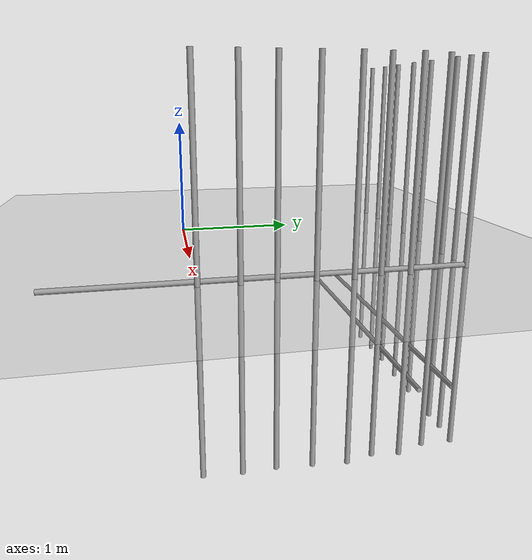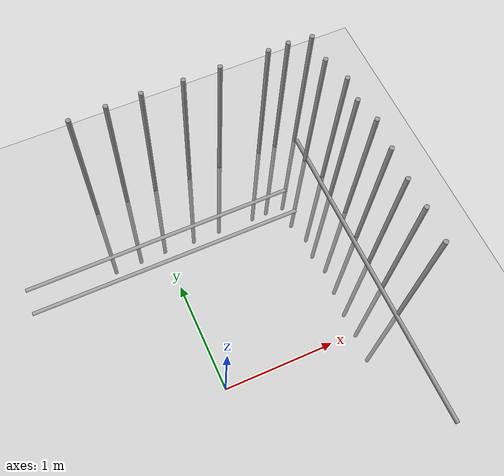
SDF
<sdf version="1.7">
 <world name="default">
  <model name="ground_plane">
   <static>1</static>
   <link name="link">
    <collision name="collision">
     <geometry><plane><normal>0 0 1</normal><size>100 100</size></plane></geometry>
     <surface><friction><ode><mu>100</mu><mu2>50</mu2></ode></friction></surface>
    </collision>
    <visual name="visual">
     <cast_shadows>0</cast_shadows>
     <geometry><plane><normal>0 0 1</normal><size>100 100</size></plane></geometry>
     <material>
      <texture><uri>file:/home/ronin/ws_smart_car/src/world_pkg/world/ground_plane.png</uri></texture>
     </material>
    </visual>
   </link>
  </model>
  <model name="Rebar_cross_clone">
   <static>1</static>
   <link name="link_0">
    <inertial>
     <mass>1</mass>
     <inertia><ixx>0.145833</ixx><ixy>0</ixy><ixz>0</ixz><iyy>0.145833</iyy><iyz>0</iyz><izz>0.125</izz></inertia>
    </inertial>
    <pose>0 0 0 1.57002 1.57 2.4e-05</pose>
    <visual name="visual">
     <geometry><cylinder><radius>0.02</radius><length>3</length></cylinder></geometry>
     <material>
      <lighting>1</lighting>
      <script><uri>file://media/materials/scripts/gazebo.material</uri><name>Gazebo/Grey</name></script>
      <shader type="pixel"><normal_map>__default__</normal_map></shader>
      <ambient>0.3 0.3 0.3 1</ambient>
      <diffuse>0.7 0.7 0.7 1</diffuse>
      <specular>0.01 0.01 0.01 1</specular>
      <emissive>0 0 0 1</emissive>
     </material>
    </visual>
    <collision name="collision">
     <geometry><cylinder><radius>0.02</radius><length>3</length></cylinder></geometry>
     <surface>
      <friction>
       <ode><mu>1</mu><mu2>1</mu2><fdir1>0 0 0</fdir1><slip1>0</slip1><slip2>0</slip2></ode>
       <torsional>
        <coefficient>1</coefficient>
        <patch_radius>0</patch_radius>
        <surface_radius>0</surface_radius>
        <use_patch_radius>1</use_patch_radius>
        <ode><slip>0</slip></ode>
       </torsional>
      </friction>
      <bounce><restitution_coefficient>0</restitution_coefficient><threshold>1e+06</threshold></bounce>
      <contact>
       <collide_without_contact>0</collide_without_contact>
       <collide_without_contact_bitmask>1</collide_without_contact_bitmask>
       <collide_bitmask>1</collide_bitmask>
       <ode>
        <soft_cfm>0</soft_cfm>
        <soft_erp>0.2</soft_erp>
        <kp>1e+13</kp>
        <kd>1</kd>
        <max_vel>0.01</max_vel>
        <min_depth>0</min_depth>
       </ode>
       <bullet>
        <split_impulse>1</split_impulse>
        <split_impulse_penetration_threshold>-0.01</split_impulse_penetration_threshold>
        <soft_cfm>0</soft_cfm>
        <soft_erp>0.2</soft_erp>
        <kp>1e+13</kp>
        <kd>1</kd>
       </bullet>
      </contact>
     </surface>
    </collision>
   </link>
   <static>0</static>
   <pose>1.63477 0.477366 0.02 -3e-06 0.003983 0.001736</pose>
  </model>
  <model name="Rebar_clone_0_clone_5">
   <static>1</static>
   <link name="link_0">
    <inertial>
     <mass>1</mass>
     <inertia><ixx>0.145833</ixx><ixy>0</ixy><ixz>0</ixz><iyy>0.145833</iyy><iyz>0</iyz><izz>0.125</izz></inertia>
    </inertial>
    <pose>0 0 -0 0 1.57 0</pose>
    <visual name="visual">
     <geometry><cylinder><radius>0.02</radius><length>3</length></cylinder></geometry>
     <material>
      <lighting>1</lighting>
      <script><uri>file://media/materials/scripts/gazebo.material</uri><name>Gazebo/Grey</name></script>
      <shader type="pixel"><normal_map>__default__</normal_map></shader>
      <ambient>0.3 0.3 0.3 1</ambient>
      <diffuse>0.7 0.7 0.7 1</diffuse>
      <specular>0.01 0.01 0.01 1</specular>
      <emissive>0 0 0 1</emissive>
     </material>
    </visual>
    <collision name="collision">
     <geometry><cylinder><radius>0.02</radius><length>3</length></cylinder></geometry>
     <surface>
      <friction>
       <ode><mu>1</mu><mu2>1</mu2><fdir1>0 0 0</fdir1><slip1>0</slip1><slip2>0</slip2></ode>
       <torsional>
        <coefficient>1</coefficient>
        <patch_radius>0</patch_radius>
        <surface_radius>0</surface_radius>
        <use_patch_radius>1</use_patch_radius>
        <ode><slip>0</slip></ode>
       </torsional>
      </friction>
      <bounce><restitution_coefficient>0</restitution_coefficient><threshold>1e+06</threshold></bounce>
      <contact>
       <collide_without_contact>0</collide_without_contact>
       <collide_without_contact_bitmask>1</collide_without_contact_bitmask>
       <collide_bitmask>1</collide_bitmask>
       <ode>
        <soft_cfm>0</soft_cfm>
        <soft_erp>0.2</soft_erp>
        <kp>1e+13</kp>
        <kd>1</kd>
        <max_vel>0.01</max_vel>
        <min_depth>0</min_depth>
       </ode>
       <bullet>
        <split_impulse>1</split_impulse>
        <split_impulse_penetration_threshold>-0.01</split_impulse_penetration_threshold>
        <soft_cfm>0</soft_cfm>
        <soft_erp>0.2</soft_erp>
        <kp>1e+13</kp>
        <kd>1</kd>
       </bullet>
      </contact>
     </surface>
    </collision>
   </link>
   <static>0</static>
   <pose>0.100655 1.71148 -1 0 0.001152 0</pose>
  </model>
  <model name="Rebar_clone_0_clone_6">
   <static>1</static>
   <link name="link_0">
    <inertial>
     <mass>1</mass>
     <inertia><ixx>0.145833</ixx><ixy>0</ixy><ixz>0</ixz><iyy>0.145833</iyy><iyz>0</iyz><izz>0.125</izz></inertia>
    </inertial>
    <pose>0 0 -0 0 1.57 0</pose>
    <visual name="visual">
     <geometry><cylinder><radius>0.02</radius><length>3</length></cylinder></geometry>
     <material>
      <lighting>1</lighting>
      <script><uri>file://media/materials/scripts/gazebo.material</uri><name>Gazebo/Grey</name></script>
      <shader type="pixel"><normal_map>__default__</normal_map></shader>
      <ambient>0.3 0.3 0.3 1</ambient>
      <diffuse>0.7 0.7 0.7 1</diffuse>
      <specular>0.01 0.01 0.01 1</specular>
      <emissive>0 0 0 1</emissive>
     </material>
    </visual>
    <collision name="collision">
     <geometry><cylinder><radius>0.02</radius><length>3</length></cylinder></geometry>
     <surface>
      <friction>
       <ode><mu>1</mu><mu2>1</mu2><fdir1>0 0 0</fdir1><slip1>0</slip1><slip2>0</slip2></ode>
       <torsional>
        <coefficient>1</coefficient>
        <patch_radius>0</patch_radius>
        <surface_radius>0</surface_radius>
        <use_patch_radius>1</use_patch_radius>
        <ode><slip>0</slip></ode>
       </torsional>
      </friction>
      <bounce><restitution_coefficient>0</restitution_coefficient><threshold>1e+06</threshold></bounce>
      <contact>
       <collide_without_contact>0</collide_without_contact>
       <collide_without_contact_bitmask>1</collide_without_contact_bitmask>
       <collide_bitmask>1</collide_bitmask>
       <ode>
        <soft_cfm>0</soft_cfm>
        <soft_erp>0.2</soft_erp>
        <kp>1e+13</kp>
        <kd>1</kd>
        <max_vel>0.01</max_vel>
        <min_depth>0</min_depth>
       </ode>
       <bullet>
        <split_impulse>1</split_impulse>
        <split_impulse_penetration_threshold>-0.01</split_impulse_penetration_threshold>
        <soft_cfm>0</soft_cfm>
        <soft_erp>0.2</soft_erp>
        <kp>1e+13</kp>
        <kd>1</kd>
       </bullet>
      </contact>
     </surface>
    </collision>
   </link>
   <static>0</static>
   <pose>0.110845 1.98674 -1 -0.001566 0.000435 0.00098</pose>
  </model>
  <model name="Rebar_vertial">
   <static>1</static>
   <link name="link_0">
    <inertial>
     <mass>1</mass>
     <inertia><ixx>0.145833</ixx><ixy>0</ixy><ixz>0</ixz><iyy>0.145833</iyy><iyz>0</iyz><izz>0.125</izz></inertia>
    </inertial>
    <visual name="visual">
     <geometry><cylinder><radius>0.02</radius><length>3</length></cylinder></geometry>
     <material>
      <lighting>1</lighting>
      <script><uri>file://media/materials/scripts/gazebo.material</uri><name>Gazebo/Grey</name></script>
      <shader type="pixel"><normal_map>__default__</normal_map></shader>
      <ambient>0.3 0.3 0.3 1</ambient>
      <diffuse>0.7 0.7 0.7 1</diffuse>
      <specular>0.01 0.01 0.01 1</specular>
      <emissive>0 0 0 1</emissive>
     </material>
    </visual>
    <collision name="collision">
     <geometry><cylinder><radius>0.02</radius><length>3</length></cylinder></geometry>
     <surface>
      <friction>
       <ode><mu>1</mu><mu2>1</mu2><fdir1>0 0 0</fdir1><slip1>0</slip1><slip2>0</slip2></ode>
       <torsional>
        <coefficient>1</coefficient>
        <patch_radius>0</patch_radius>
        <surface_radius>0</surface_radius>
        <use_patch_radius>1</use_patch_radius>
        <ode><slip>0</slip></ode>
       </torsional>
      </friction>
      <bounce><restitution_coefficient>0</restitution_coefficient><threshold>1e+06</threshold></bounce>
      <contact>
       <collide_without_contact>0</collide_without_contact>
       <collide_without_contact_bitmask>1</collide_without_contact_bitmask>
       <collide_bitmask>1</collide_bitmask>
       <ode>
        <soft_cfm>0</soft_cfm>
        <soft_erp>0.2</soft_erp>
        <kp>1e+13</kp>
        <kd>1</kd>
        <max_vel>0.01</max_vel>
        <min_depth>0</min_depth>
       </ode>
       <bullet>
        <split_impulse>1</split_impulse>
        <split_impulse_penetration_threshold>-0.01</split_impulse_penetration_threshold>
        <soft_cfm>0</soft_cfm>
        <soft_erp>0.2</soft_erp>
        <kp>1e+13</kp>
        <kd>1</kd>
       </bullet>
      </contact>
     </surface>
    </collision>
   </link>
   <static>0</static>
   <pose>1.6202 2.00322 0.019459 -0.001562 0.001157 0.000983</pose>
  </model>
  <model name="Rebar_vertial_clone">
   <static>1</static>
   <link name="link_0">
    <inertial>
     <mass>1</mass>
     <inertia><ixx>0.145833</ixx><ixy>0</ixy><ixz>0</ixz><iyy>0.145833</iyy><iyz>0</iyz><izz>0.125</izz></inertia>
    </inertial>
    <visual name="visual">
     <geometry><cylinder><radius>0.02</radius><length>3</length></cylinder></geometry>
     <material>
      <lighting>1</lighting>
      <script><uri>file://media/materials/scripts/gazebo.material</uri><name>Gazebo/Grey</name></script>
      <shader type="pixel"><normal_map>__default__</normal_map></shader>
      <ambient>0.3 0.3 0.3 1</ambient>
      <diffuse>0.7 0.7 0.7 1</diffuse>
      <specular>0.01 0.01 0.01 1</specular>
      <emissive>0 0 0 1</emissive>
     </material>
    </visual>
    <collision name="collision">
     <geometry><cylinder><radius>0.02</radius><length>3</length></cylinder></geometry>
     <surface>
      <friction>
       <ode><mu>1</mu><mu2>1</mu2><fdir1>0 0 0</fdir1><slip1>0</slip1><slip2>0</slip2></ode>
       <torsional>
        <coefficient>1</coefficient>
        <patch_radius>0</patch_radius>
        <surface_radius>0</surface_radius>
        <use_patch_radius>1</use_patch_radius>
        <ode><slip>0</slip></ode>
       </torsional>
      </friction>
      <bounce><restitution_coefficient>0</restitution_coefficient><threshold>1e+06</threshold></bounce>
      <contact>
       <collide_without_contact>0</collide_without_contact>
       <collide_without_contact_bitmask>1</collide_without_contact_bitmask>
       <collide_bitmask>1</collide_bitmask>
       <ode>
        <soft_cfm>0</soft_cfm>
        <soft_erp>0.2</soft_erp>
        <kp>1e+13</kp>
        <kd>1</kd>
        <max_vel>0.01</max_vel>
        <min_depth>0</min_depth>
       </ode>
       <bullet>
        <split_impulse>1</split_impulse>
        <split_impulse_penetration_threshold>-0.01</split_impulse_penetration_threshold>
        <soft_cfm>0</soft_cfm>
        <soft_erp>0.2</soft_erp>
        <kp>1e+13</kp>
        <kd>1</kd>
       </bullet>
      </contact>
     </surface>
    </collision>
   </link>
   <static>0</static>
   <pose>1.61527 1.75563 0.019459 -0.001562 0.001157 0.000983</pose>
  </model>
  <model name="Rebar_vertial_clone_0">
   <static>1</static>
   <link name="link_0">
    <inertial>
     <mass>1</mass>
     <inertia><ixx>0.145833</ixx><ixy>0</ixy><ixz>0</ixz><iyy>0.145833</iyy><iyz>0</iyz><izz>0.125</izz></inertia>
    </inertial>
    <visual name="visual">
     <geometry><cylinder><radius>0.02</radius><length>3</length></cylinder></geometry>
     <material>
      <lighting>1</lighting>
      <script><uri>file://media/materials/scripts/gazebo.material</uri><name>Gazebo/Grey</name></script>
      <shader type="pixel"><normal_map>__default__</normal_map></shader>
      <ambient>0.3 0.3 0.3 1</ambient>
      <diffuse>0.7 0.7 0.7 1</diffuse>
      <specular>0.01 0.01 0.01 1</specular>
      <emissive>0 0 0 1</emissive>
     </material>
    </visual>
    <collision name="collision">
     <geometry><cylinder><radius>0.02</radius><length>3</length></cylinder></geometry>
     <surface>
      <friction>
       <ode><mu>1</mu><mu2>1</mu2><fdir1>0 0 0</fdir1><slip1>0</slip1><slip2>0</slip2></ode>
       <torsional>
        <coefficient>1</coefficient>
        <patch_radius>0</patch_radius>
        <surface_radius>0</surface_radius>
        <use_patch_radius>1</use_patch_radius>
        <ode><slip>0</slip></ode>
       </torsional>
      </friction>
      <bounce><restitution_coefficient>0</restitution_coefficient><threshold>1e+06</threshold></bounce>
      <contact>
       <collide_without_contact>0</collide_without_contact>
       <collide_without_contact_bitmask>1</collide_without_contact_bitmask>
       <collide_bitmask>1</collide_bitmask>
       <ode>
        <soft_cfm>0</soft_cfm>
        <soft_erp>0.2</soft_erp>
        <kp>1e+13</kp>
        <kd>1</kd>
        <max_vel>0.01</max_vel>
        <min_depth>0</min_depth>
       </ode>
       <bullet>
        <split_impulse>1</split_impulse>
        <split_impulse_penetration_threshold>-0.01</split_impulse_penetration_threshold>
        <soft_cfm>0</soft_cfm>
        <soft_erp>0.2</soft_erp>
        <kp>1e+13</kp>
        <kd>1</kd>
       </bullet>
      </contact>
     </surface>
    </collision>
   </link>
   <static>0</static>
   <pose>1.69097 1.52613 0.019459 -0.001562 0.001157 0.000983</pose>
  </model>
  <model name="Rebar_vertial_clone_1">
   <static>1</static>
   <link name="link_0">
    <inertial>
     <mass>1</mass>
     <inertia><ixx>0.145833</ixx><ixy>0</ixy><ixz>0</ixz><iyy>0.145833</iyy><iyz>0</iyz><izz>0.125</izz></inertia>
    </inertial>
    <visual name="visual">
     <geometry><cylinder><radius>0.02</radius><length>3</length></cylinder></geometry>
     <material>
      <lighting>1</lighting>
      <script><uri>file://media/materials/scripts/gazebo.material</uri><name>Gazebo/Grey</name></script>
      <shader type="pixel"><normal_map>__default__</normal_map></shader>
      <ambient>0.3 0.3 0.3 1</ambient>
      <diffuse>0.7 0.7 0.7 1</diffuse>
      <specular>0.01 0.01 0.01 1</specular>
      <emissive>0 0 0 1</emissive>
     </material>
    </visual>
    <collision name="collision">
     <geometry><cylinder><radius>0.02</radius><length>3</length></cylinder></geometry>
     <surface>
      <friction>
       <ode><mu>1</mu><mu2>1</mu2><fdir1>0 0 0</fdir1><slip1>0</slip1><slip2>0</slip2></ode>
       <torsional>
        <coefficient>1</coefficient>
        <patch_radius>0</patch_radius>
        <surface_radius>0</surface_radius>
        <use_patch_radius>1</use_patch_radius>
        <ode><slip>0</slip></ode>
       </torsional>
      </friction>
      <bounce><restitution_coefficient>0</restitution_coefficient><threshold>1e+06</threshold></bounce>
      <contact>
       <collide_without_contact>0</collide_without_contact>
       <collide_without_contact_bitmask>1</collide_without_contact_bitmask>
       <collide_bitmask>1</collide_bitmask>
       <ode>
        <soft_cfm>0</soft_cfm>
        <soft_erp>0.2</soft_erp>
        <kp>1e+13</kp>
        <kd>1</kd>
        <max_vel>0.01</max_vel>
        <min_depth>0</min_depth>
       </ode>
       <bullet>
        <split_impulse>1</split_impulse>
        <split_impulse_penetration_threshold>-0.01</split_impulse_penetration_threshold>
        <soft_cfm>0</soft_cfm>
        <soft_erp>0.2</soft_erp>
        <kp>1e+13</kp>
        <kd>1</kd>
       </bullet>
      </contact>
     </surface>
    </collision>
   </link>
   <static>0</static>
   <pose>1.66538 1.31262 0.019459 -0.001562 0.001157 0.000983</pose>
  </model>
  <model name="Rebar_vertial_clone_2">
   <static>1</static>
   <link name="link_0">
    <inertial>
     <mass>1</mass>
     <inertia><ixx>0.145833</ixx><ixy>0</ixy><ixz>0</ixz><iyy>0.145833</iyy><iyz>0</iyz><izz>0.125</izz></inertia>
    </inertial>
    <visual name="visual">
     <geometry><cylinder><radius>0.02</radius><length>3</length></cylinder></geometry>
     <material>
      <lighting>1</lighting>
      <script><uri>file://media/materials/scripts/gazebo.material</uri><name>Gazebo/Grey</name></script>
      <shader type="pixel"><normal_map>__default__</normal_map></shader>
      <ambient>0.3 0.3 0.3 1</ambient>
      <diffuse>0.7 0.7 0.7 1</diffuse>
      <specular>0.01 0.01 0.01 1</specular>
      <emissive>0 0 0 1</emissive>
     </material>
    </visual>
    <collision name="collision">
     <geometry><cylinder><radius>0.02</radius><length>3</length></cylinder></geometry>
     <surface>
      <friction>
       <ode><mu>1</mu><mu2>1</mu2><fdir1>0 0 0</fdir1><slip1>0</slip1><slip2>0</slip2></ode>
       <torsional>
        <coefficient>1</coefficient>
        <patch_radius>0</patch_radius>
        <surface_radius>0</surface_radius>
        <use_patch_radius>1</use_patch_radius>
        <ode><slip>0</slip></ode>
       </torsional>
      </friction>
      <bounce><restitution_coefficient>0</restitution_coefficient><threshold>1e+06</threshold></bounce>
      <contact>
       <collide_without_contact>0</collide_without_contact>
       <collide_without_contact_bitmask>1</collide_without_contact_bitmask>
       <collide_bitmask>1</collide_bitmask>
       <ode>
        <soft_cfm>0</soft_cfm>
        <soft_erp>0.2</soft_erp>
        <kp>1e+13</kp>
        <kd>1</kd>
        <max_vel>0.01</max_vel>
        <min_depth>0</min_depth>
       </ode>
       <bullet>
        <split_impulse>1</split_impulse>
        <split_impulse_penetration_threshold>-0.01</split_impulse_penetration_threshold>
        <soft_cfm>0</soft_cfm>
        <soft_erp>0.2</soft_erp>
        <kp>1e+13</kp>
        <kd>1</kd>
       </bullet>
      </contact>
     </surface>
    </collision>
   </link>
   <static>0</static>
   <pose>1.71531 1.09533 0.019459 -0.001562 0.001157 0.000983</pose>
  </model>
  <model name="Rebar_vertial_clone_3">
   <static>1</static>
   <link name="link_0">
    <inertial>
     <mass>1</mass>
     <inertia><ixx>0.145833</ixx><ixy>0</ixy><ixz>0</ixz><iyy>0.145833</iyy><iyz>0</iyz><izz>0.125</izz></inertia>
    </inertial>
    <visual name="visual">
     <geometry><cylinder><radius>0.02</radius><length>3</length></cylinder></geometry>
     <material>
      <lighting>1</lighting>
      <script><uri>file://media/materials/scripts/gazebo.material</uri><name>Gazebo/Grey</name></script>
      <shader type="pixel"><normal_map>__default__</normal_map></shader>
      <ambient>0.3 0.3 0.3 1</ambient>
      <diffuse>0.7 0.7 0.7 1</diffuse>
      <specular>0.01 0.01 0.01 1</specular>
      <emissive>0 0 0 1</emissive>
     </material>
    </visual>
    <collision name="collision">
     <geometry><cylinder><radius>0.02</radius><length>3</length></cylinder></geometry>
     <surface>
      <friction>
       <ode><mu>1</mu><mu2>1</mu2><fdir1>0 0 0</fdir1><slip1>0</slip1><slip2>0</slip2></ode>
       <torsional>
        <coefficient>1</coefficient>
        <patch_radius>0</patch_radius>
        <surface_radius>0</surface_radius>
        <use_patch_radius>1</use_patch_radius>
        <ode><slip>0</slip></ode>
       </torsional>
      </friction>
      <bounce><restitution_coefficient>0</restitution_coefficient><threshold>1e+06</threshold></bounce>
      <contact>
       <collide_without_contact>0</collide_without_contact>
       <collide_without_contact_bitmask>1</collide_without_contact_bitmask>
       <collide_bitmask>1</collide_bitmask>
       <ode>
        <soft_cfm>0</soft_cfm>
        <soft_erp>0.2</soft_erp>
        <kp>1e+13</kp>
        <kd>1</kd>
        <max_vel>0.01</max_vel>
        <min_depth>0</min_depth>
       </ode>
       <bullet>
        <split_impulse>1</split_impulse>
        <split_impulse_penetration_threshold>-0.01</split_impulse_penetration_threshold>
        <soft_cfm>0</soft_cfm>
        <soft_erp>0.2</soft_erp>
        <kp>1e+13</kp>
        <kd>1</kd>
       </bullet>
      </contact>
     </surface>
    </collision>
   </link>
   <static>0</static>
   <pose>1.69149 0.827238 0.019459 -0.001562 0.001157 0.000983</pose>
  </model>
  <model name="Rebar_vertial_clone_4">
   <static>1</static>
   <link name="link_0">
    <inertial>
     <mass>1</mass>
     <inertia><ixx>0.145833</ixx><ixy>0</ixy><ixz>0</ixz><iyy>0.145833</iyy><iyz>0</iyz><izz>0.125</izz></inertia>
    </inertial>
    <visual name="visual">
     <geometry><cylinder><radius>0.02</radius><length>3</length></cylinder></geometry>
     <material>
      <lighting>1</lighting>
      <script><uri>file://media/materials/scripts/gazebo.material</uri><name>Gazebo/Grey</name></script>
      <shader type="pixel"><normal_map>__default__</normal_map></shader>
      <ambient>0.3 0.3 0.3 1</ambient>
      <diffuse>0.7 0.7 0.7 1</diffuse>
      <specular>0.01 0.01 0.01 1</specular>
      <emissive>0 0 0 1</emissive>
     </material>
    </visual>
    <collision name="collision">
     <geometry><cylinder><radius>0.02</radius><length>3</length></cylinder></geometry>
     <surface>
      <friction>
       <ode><mu>1</mu><mu2>1</mu2><fdir1>0 0 0</fdir1><slip1>0</slip1><slip2>0</slip2></ode>
       <torsional>
        <coefficient>1</coefficient>
        <patch_radius>0</patch_radius>
        <surface_radius>0</surface_radius>
        <use_patch_radius>1</use_patch_radius>
        <ode><slip>0</slip></ode>
       </torsional>
      </friction>
      <bounce><restitution_coefficient>0</restitution_coefficient><threshold>1e+06</threshold></bounce>
      <contact>
       <collide_without_contact>0</collide_without_contact>
       <collide_without_contact_bitmask>1</collide_without_contact_bitmask>
       <collide_bitmask>1</collide_bitmask>
       <ode>
        <soft_cfm>0</soft_cfm>
        <soft_erp>0.2</soft_erp>
        <kp>1e+13</kp>
        <kd>1</kd>
        <max_vel>0.01</max_vel>
        <min_depth>0</min_depth>
       </ode>
       <bullet>
        <split_impulse>1</split_impulse>
        <split_impulse_penetration_threshold>-0.01</split_impulse_penetration_threshold>
        <soft_cfm>0</soft_cfm>
        <soft_erp>0.2</soft_erp>
        <kp>1e+13</kp>
        <kd>1</kd>
       </bullet>
      </contact>
     </surface>
    </collision>
   </link>
   <static>0</static>
   <pose>1.67107 0.552466 0.019459 -0.001562 0.001157 0.000983</pose>
  </model>
  <model name="Rebar_vertial_clone_5">
   <static>1</static>
   <link name="link_0">
    <inertial>
     <mass>1</mass>
     <inertia><ixx>0.145833</ixx><ixy>0</ixy><ixz>0</ixz><iyy>0.145833</iyy><iyz>0</iyz><izz>0.125</izz></inertia>
    </inertial>
    <visual name="visual">
     <geometry><cylinder><radius>0.02</radius><length>3</length></cylinder></geometry>
     <material>
      <lighting>1</lighting>
      <script><uri>file://media/materials/scripts/gazebo.material</uri><name>Gazebo/Grey</name></script>
      <shader type="pixel"><normal_map>__default__</normal_map></shader>
      <ambient>0.3 0.3 0.3 1</ambient>
      <diffuse>0.7 0.7 0.7 1</diffuse>
      <specular>0.01 0.01 0.01 1</specular>
      <emissive>0 0 0 1</emissive>
     </material>
    </visual>
    <collision name="collision">
     <geometry><cylinder><radius>0.02</radius><length>3</length></cylinder></geometry>
     <surface>
      <friction>
       <ode><mu>1</mu><mu2>1</mu2><fdir1>0 0 0</fdir1><slip1>0</slip1><slip2>0</slip2></ode>
       <torsional>
        <coefficient>1</coefficient>
        <patch_radius>0</patch_radius>
        <surface_radius>0</surface_radius>
        <use_patch_radius>1</use_patch_radius>
        <ode><slip>0</slip></ode>
       </torsional>
      </friction>
      <bounce><restitution_coefficient>0</restitution_coefficient><threshold>1e+06</threshold></bounce>
      <contact>
       <collide_without_contact>0</collide_without_contact>
       <collide_without_contact_bitmask>1</collide_without_contact_bitmask>
       <collide_bitmask>1</collide_bitmask>
       <ode>
        <soft_cfm>0</soft_cfm>
        <soft_erp>0.2</soft_erp>
        <kp>1e+13</kp>
        <kd>1</kd>
        <max_vel>0.01</max_vel>
        <min_depth>0</min_depth>
       </ode>
       <bullet>
        <split_impulse>1</split_impulse>
        <split_impulse_penetration_threshold>-0.01</split_impulse_penetration_threshold>
        <soft_cfm>0</soft_cfm>
        <soft_erp>0.2</soft_erp>
        <kp>1e+13</kp>
        <kd>1</kd>
       </bullet>
      </contact>
     </surface>
    </collision>
   </link>
   <static>0</static>
   <pose>1.67747 0.296676 0.019459 -0.001562 0.001157 0.000983</pose>
  </model>
  <model name="Rebar_vertial_clone_6">
   <static>1</static>
   <link name="link_0">
    <inertial>
     <mass>1</mass>
     <inertia><ixx>0.145833</ixx><ixy>0</ixy><ixz>0</ixz><iyy>0.145833</iyy><iyz>0</iyz><izz>0.125</izz></inertia>
    </inertial>
    <visual name="visual">
     <geometry><cylinder><radius>0.02</radius><length>3</length></cylinder></geometry>
     <material>
      <lighting>1</lighting>
      <script><uri>file://media/materials/scripts/gazebo.material</uri><name>Gazebo/Grey</name></script>
      <shader type="pixel"><normal_map>__default__</normal_map></shader>
      <ambient>0.3 0.3 0.3 1</ambient>
      <diffuse>0.7 0.7 0.7 1</diffuse>
      <specular>0.01 0.01 0.01 1</specular>
      <emissive>0 0 0 1</emissive>
     </material>
    </visual>
    <collision name="collision">
     <geometry><cylinder><radius>0.02</radius><length>3</length></cylinder></geometry>
     <surface>
      <friction>
       <ode><mu>1</mu><mu2>1</mu2><fdir1>0 0 0</fdir1><slip1>0</slip1><slip2>0</slip2></ode>
       <torsional>
        <coefficient>1</coefficient>
        <patch_radius>0</patch_radius>
        <surface_radius>0</surface_radius>
        <use_patch_radius>1</use_patch_radius>
        <ode><slip>0</slip></ode>
       </torsional>
      </friction>
      <bounce><restitution_coefficient>0</restitution_coefficient><threshold>1e+06</threshold></bounce>
      <contact>
       <collide_without_contact>0</collide_without_contact>
       <collide_without_contact_bitmask>1</collide_without_contact_bitmask>
       <collide_bitmask>1</collide_bitmask>
       <ode>
        <soft_cfm>0</soft_cfm>
        <soft_erp>0.2</soft_erp>
        <kp>1e+13</kp>
        <kd>1</kd>
        <max_vel>0.01</max_vel>
        <min_depth>0</min_depth>
       </ode>
       <bullet>
        <split_impulse>1</split_impulse>
        <split_impulse_penetration_threshold>-0.01</split_impulse_penetration_threshold>
        <soft_cfm>0</soft_cfm>
        <soft_erp>0.2</soft_erp>
        <kp>1e+13</kp>
        <kd>1</kd>
       </bullet>
      </contact>
     </surface>
    </collision>
   </link>
   <static>0</static>
   <pose>1.6601 0.005686 0.019459 -0.001562 0.001157 0.000983</pose>
  </model>
  <model name="Rebar_vertial_clone_40">
   <static>1</static>
   <link name="link_0">
    <inertial>
     <mass>1</mass>
     <inertia><ixx>0.145833</ixx><ixy>0</ixy><ixz>0</ixz><iyy>0.145833</iyy><iyz>0</iyz><izz>0.125</izz></inertia>
    </inertial>
    <visual name="visual">
     <geometry><cylinder><radius>0.02</radius><length>3</length></cylinder></geometry>
     <material>
      <lighting>1</lighting>
      <script><uri>file://media/materials/scripts/gazebo.material</uri><name>Gazebo/Grey</name></script>
      <shader type="pixel"><normal_map>__default__</normal_map></shader>
      <ambient>0.3 0.3 0.3 1</ambient>
      <diffuse>0.7 0.7 0.7 1</diffuse>
      <specular>0.01 0.01 0.01 1</specular>
      <emissive>0 0 0 1</emissive>
     </material>
    </visual>
    <collision name="collision">
     <geometry><cylinder><radius>0.02</radius><length>3</length></cylinder></geometry>
     <surface>
      <friction>
       <ode><mu>1</mu><mu2>1</mu2><fdir1>0 0 0</fdir1><slip1>0</slip1><slip2>0</slip2></ode>
       <torsional>
        <coefficient>1</coefficient>
        <patch_radius>0</patch_radius>
        <surface_radius>0</surface_radius>
        <use_patch_radius>1</use_patch_radius>
        <ode><slip>0</slip></ode>
       </torsional>
      </friction>
      <bounce><restitution_coefficient>0</restitution_coefficient><threshold>1e+06</threshold></bounce>
      <contact>
       <collide_without_contact>0</collide_without_contact>
       <collide_without_contact_bitmask>1</collide_without_contact_bitmask>
       <collide_bitmask>1</collide_bitmask>
       <ode>
        <soft_cfm>0</soft_cfm>
        <soft_erp>0.2</soft_erp>
        <kp>1e+13</kp>
        <kd>1</kd>
        <max_vel>0.01</max_vel>
        <min_depth>0</min_depth>
       </ode>
       <bullet>
        <split_impulse>1</split_impulse>
        <split_impulse_penetration_threshold>-0.01</split_impulse_penetration_threshold>
        <soft_cfm>0</soft_cfm>
        <soft_erp>0.2</soft_erp>
        <kp>1e+13</kp>
        <kd>1</kd>
       </bullet>
      </contact>
     </surface>
    </collision>
   </link>
   <static>0</static>
   <pose>-0.434795 2.01458 0.019459 -0.001562 0.001157 0.000983</pose>
  </model>
  <model name="Rebar_vertial_clone_41">
   <static>1</static>
   <link name="link_0">
    <inertial>
     <mass>1</mass>
     <inertia><ixx>0.145833</ixx><ixy>0</ixy><ixz>0</ixz><iyy>0.145833</iyy><iyz>0</iyz><izz>0.125</izz></inertia>
    </inertial>
    <visual name="visual">
     <geometry><cylinder><radius>0.02</radius><length>3</length></cylinder></geometry>
     <material>
      <lighting>1</lighting>
      <script><uri>file://media/materials/scripts/gazebo.material</uri><name>Gazebo/Grey</name></script>
      <shader type="pixel"><normal_map>__default__</normal_map></shader>
      <ambient>0.3 0.3 0.3 1</ambient>
      <diffuse>0.7 0.7 0.7 1</diffuse>
      <specular>0.01 0.01 0.01 1</specular>
      <emissive>0 0 0 1</emissive>
     </material>
    </visual>
    <collision name="collision">
     <geometry><cylinder><radius>0.02</radius><length>3</length></cylinder></geometry>
     <surface>
      <friction>
       <ode><mu>1</mu><mu2>1</mu2><fdir1>0 0 0</fdir1><slip1>0</slip1><slip2>0</slip2></ode>
       <torsional>
        <coefficient>1</coefficient>
        <patch_radius>0</patch_radius>
        <surface_radius>0</surface_radius>
        <use_patch_radius>1</use_patch_radius>
        <ode><slip>0</slip></ode>
       </torsional>
      </friction>
      <bounce><restitution_coefficient>0</restitution_coefficient><threshold>1e+06</threshold></bounce>
      <contact>
       <collide_without_contact>0</collide_without_contact>
       <collide_without_contact_bitmask>1</collide_without_contact_bitmask>
       <collide_bitmask>1</collide_bitmask>
       <ode>
        <soft_cfm>0</soft_cfm>
        <soft_erp>0.2</soft_erp>
        <kp>1e+13</kp>
        <kd>1</kd>
        <max_vel>0.01</max_vel>
        <min_depth>0</min_depth>
       </ode>
       <bullet>
        <split_impulse>1</split_impulse>
        <split_impulse_penetration_threshold>-0.01</split_impulse_penetration_threshold>
        <soft_cfm>0</soft_cfm>
        <soft_erp>0.2</soft_erp>
        <kp>1e+13</kp>
        <kd>1</kd>
       </bullet>
      </contact>
     </surface>
    </collision>
   </link>
   <static>0</static>
   <pose>-0.132139 2.02398 0.019459 -0.001562 0.001157 0.000983</pose>
  </model>
  <model name="Rebar_vertial_clone_42">
   <static>1</static>
   <link name="link_0">
    <inertial>
     <mass>1</mass>
     <inertia><ixx>0.145833</ixx><ixy>0</ixy><ixz>0</ixz><iyy>0.145833</iyy><iyz>0</iyz><izz>0.125</izz></inertia>
    </inertial>
    <visual name="visual">
     <geometry><cylinder><radius>0.02</radius><length>3</length></cylinder></geometry>
     <material>
      <lighting>1</lighting>
      <script><uri>file://media/materials/scripts/gazebo.material</uri><name>Gazebo/Grey</name></script>
      <shader type="pixel"><normal_map>__default__</normal_map></shader>
      <ambient>0.3 0.3 0.3 1</ambient>
      <diffuse>0.7 0.7 0.7 1</diffuse>
      <specular>0.01 0.01 0.01 1</specular>
      <emissive>0 0 0 1</emissive>
     </material>
    </visual>
    <collision name="collision">
     <geometry><cylinder><radius>0.02</radius><length>3</length></cylinder></geometry>
     <surface>
      <friction>
       <ode><mu>1</mu><mu2>1</mu2><fdir1>0 0 0</fdir1><slip1>0</slip1><slip2>0</slip2></ode>
       <torsional>
        <coefficient>1</coefficient>
        <patch_radius>0</patch_radius>
        <surface_radius>0</surface_radius>
        <use_patch_radius>1</use_patch_radius>
        <ode><slip>0</slip></ode>
       </torsional>
      </friction>
      <bounce><restitution_coefficient>0</restitution_coefficient><threshold>1e+06</threshold></bounce>
      <contact>
       <collide_without_contact>0</collide_without_contact>
       <collide_without_contact_bitmask>1</collide_without_contact_bitmask>
       <collide_bitmask>1</collide_bitmask>
       <ode>
        <soft_cfm>0</soft_cfm>
        <soft_erp>0.2</soft_erp>
        <kp>1e+13</kp>
        <kd>1</kd>
        <max_vel>0.01</max_vel>
        <min_depth>0</min_depth>
       </ode>
       <bullet>
        <split_impulse>1</split_impulse>
        <split_impulse_penetration_threshold>-0.01</split_impulse_penetration_threshold>
        <soft_cfm>0</soft_cfm>
        <soft_erp>0.2</soft_erp>
        <kp>1e+13</kp>
        <kd>1</kd>
       </bullet>
      </contact>
     </surface>
    </collision>
   </link>
   <static>0</static>
   <pose>0.160042 2.03055 0.019459 -0.001562 0.001157 0.000983</pose>
  </model>
  <model name="Rebar_vertial_clone_43">
   <static>1</static>
   <link name="link_0">
    <inertial>
     <mass>1</mass>
     <inertia><ixx>0.145833</ixx><ixy>0</ixy><ixz>0</ixz><iyy>0.145833</iyy><iyz>0</iyz><izz>0.125</izz></inertia>
    </inertial>
    <visual name="visual">
     <geometry><cylinder><radius>0.02</radius><length>3</length></cylinder></geometry>
     <material>
      <lighting>1</lighting>
      <script><uri>file://media/materials/scripts/gazebo.material</uri><name>Gazebo/Grey</name></script>
      <shader type="pixel"><normal_map>__default__</normal_map></shader>
      <ambient>0.3 0.3 0.3 1</ambient>
      <diffuse>0.7 0.7 0.7 1</diffuse>
      <specular>0.01 0.01 0.01 1</specular>
      <emissive>0 0 0 1</emissive>
     </material>
    </visual>
    <collision name="collision">
     <geometry><cylinder><radius>0.02</radius><length>3</length></cylinder></geometry>
     <surface>
      <friction>
       <ode><mu>1</mu><mu2>1</mu2><fdir1>0 0 0</fdir1><slip1>0</slip1><slip2>0</slip2></ode>
       <torsional>
        <coefficient>1</coefficient>
        <patch_radius>0</patch_radius>
        <surface_radius>0</surface_radius>
        <use_patch_radius>1</use_patch_radius>
        <ode><slip>0</slip></ode>
       </torsional>
      </friction>
      <bounce><restitution_coefficient>0</restitution_coefficient><threshold>1e+06</threshold></bounce>
      <contact>
       <collide_without_contact>0</collide_without_contact>
       <collide_without_contact_bitmask>1</collide_without_contact_bitmask>
       <collide_bitmask>1</collide_bitmask>
       <ode>
        <soft_cfm>0</soft_cfm>
        <soft_erp>0.2</soft_erp>
        <kp>1e+13</kp>
        <kd>1</kd>
        <max_vel>0.01</max_vel>
        <min_depth>0</min_depth>
       </ode>
       <bullet>
        <split_impulse>1</split_impulse>
        <split_impulse_penetration_threshold>-0.01</split_impulse_penetration_threshold>
        <soft_cfm>0</soft_cfm>
        <soft_erp>0.2</soft_erp>
        <kp>1e+13</kp>
        <kd>1</kd>
       </bullet>
      </contact>
     </surface>
    </collision>
   </link>
   <static>0</static>
   <pose>0.506407 2.01722 0.019459 -0.001562 0.001157 0.000983</pose>
  </model>
  <model name="Rebar_vertial_clone_44">
   <static>1</static>
   <link name="link_0">
    <inertial>
     <mass>1</mass>
     <inertia><ixx>0.145833</ixx><ixy>0</ixy><ixz>0</ixz><iyy>0.145833</iyy><iyz>0</iyz><izz>0.125</izz></inertia>
    </inertial>
    <visual name="visual">
     <geometry><cylinder><radius>0.02</radius><length>3</length></cylinder></geometry>
     <material>
      <lighting>1</lighting>
      <script><uri>file://media/materials/scripts/gazebo.material</uri><name>Gazebo/Grey</name></script>
      <shader type="pixel"><normal_map>__default__</normal_map></shader>
      <ambient>0.3 0.3 0.3 1</ambient>
      <diffuse>0.7 0.7 0.7 1</diffuse>
      <specular>0.01 0.01 0.01 1</specular>
      <emissive>0 0 0 1</emissive>
     </material>
    </visual>
    <collision name="collision">
     <geometry><cylinder><radius>0.02</radius><length>3</length></cylinder></geometry>
     <surface>
      <friction>
       <ode><mu>1</mu><mu2>1</mu2><fdir1>0 0 0</fdir1><slip1>0</slip1><slip2>0</slip2></ode>
       <torsional>
        <coefficient>1</coefficient>
        <patch_radius>0</patch_radius>
        <surface_radius>0</surface_radius>
        <use_patch_radius>1</use_patch_radius>
        <ode><slip>0</slip></ode>
       </torsional>
      </friction>
      <bounce><restitution_coefficient>0</restitution_coefficient><threshold>1e+06</threshold></bounce>
      <contact>
       <collide_without_contact>0</collide_without_contact>
       <collide_without_contact_bitmask>1</collide_without_contact_bitmask>
       <collide_bitmask>1</collide_bitmask>
       <ode>
        <soft_cfm>0</soft_cfm>
        <soft_erp>0.2</soft_erp>
        <kp>1e+13</kp>
        <kd>1</kd>
        <max_vel>0.01</max_vel>
        <min_depth>0</min_depth>
       </ode>
       <bullet>
        <split_impulse>1</split_impulse>
        <split_impulse_penetration_threshold>-0.01</split_impulse_penetration_threshold>
        <soft_cfm>0</soft_cfm>
        <soft_erp>0.2</soft_erp>
        <kp>1e+13</kp>
        <kd>1</kd>
       </bullet>
      </contact>
     </surface>
    </collision>
   </link>
   <static>0</static>
   <pose>0.821421 2.02084 0.019459 -0.001562 0.001157 0.000983</pose>
  </model>
  <model name="Rebar_vertial_clone_45">
   <static>1</static>
   <link name="link_0">
    <inertial>
     <mass>1</mass>
     <inertia><ixx>0.145833</ixx><ixy>0</ixy><ixz>0</ixz><iyy>0.145833</iyy><iyz>0</iyz><izz>0.125</izz></inertia>
    </inertial>
    <visual name="visual">
     <geometry><cylinder><radius>0.02</radius><length>3</length></cylinder></geometry>
     <material>
      <lighting>1</lighting>
      <script><uri>file://media/materials/scripts/gazebo.material</uri><name>Gazebo/Grey</name></script>
      <shader type="pixel"><normal_map>__default__</normal_map></shader>
      <ambient>0.3 0.3 0.3 1</ambient>
      <diffuse>0.7 0.7 0.7 1</diffuse>
      <specular>0.01 0.01 0.01 1</specular>
      <emissive>0 0 0 1</emissive>
     </material>
    </visual>
    <collision name="collision">
     <geometry><cylinder><radius>0.02</radius><length>3</length></cylinder></geometry>
     <surface>
      <friction>
       <ode><mu>1</mu><mu2>1</mu2><fdir1>0 0 0</fdir1><slip1>0</slip1><slip2>0</slip2></ode>
       <torsional>
        <coefficient>1</coefficient>
        <patch_radius>0</patch_radius>
        <surface_radius>0</surface_radius>
        <use_patch_radius>1</use_patch_radius>
        <ode><slip>0</slip></ode>
       </torsional>
      </friction>
      <bounce><restitution_coefficient>0</restitution_coefficient><threshold>1e+06</threshold></bounce>
      <contact>
       <collide_without_contact>0</collide_without_contact>
       <collide_without_contact_bitmask>1</collide_without_contact_bitmask>
       <collide_bitmask>1</collide_bitmask>
       <ode>
        <soft_cfm>0</soft_cfm>
        <soft_erp>0.2</soft_erp>
        <kp>1e+13</kp>
        <kd>1</kd>
        <max_vel>0.01</max_vel>
        <min_depth>0</min_depth>
       </ode>
       <bullet>
        <split_impulse>1</split_impulse>
        <split_impulse_penetration_threshold>-0.01</split_impulse_penetration_threshold>
        <soft_cfm>0</soft_cfm>
        <soft_erp>0.2</soft_erp>
        <kp>1e+13</kp>
        <kd>1</kd>
       </bullet>
      </contact>
     </surface>
    </collision>
   </link>
   <static>0</static>
   <pose>1.41661 2.02065 0.019459 -0.001562 0.001157 0.000983</pose>
  </model>
  <model name="Rebar_vertial_clone_46">
   <static>1</static>
   <link name="link_0">
    <inertial>
     <mass>1</mass>
     <inertia><ixx>0.145833</ixx><ixy>0</ixy><ixz>0</ixz><iyy>0.145833</iyy><iyz>0</iyz><izz>0.125</izz></inertia>
    </inertial>
    <visual name="visual">
     <geometry><cylinder><radius>0.02</radius><length>3</length></cylinder></geometry>
     <material>
      <lighting>1</lighting>
      <script><uri>file://media/materials/scripts/gazebo.material</uri><name>Gazebo/Grey</name></script>
      <shader type="pixel"><normal_map>__default__</normal_map></shader>
      <ambient>0.3 0.3 0.3 1</ambient>
      <diffuse>0.7 0.7 0.7 1</diffuse>
      <specular>0.01 0.01 0.01 1</specular>
      <emissive>0 0 0 1</emissive>
     </material>
    </visual>
    <collision name="collision">
     <geometry><cylinder><radius>0.02</radius><length>3</length></cylinder></geometry>
     <surface>
      <friction>
       <ode><mu>1</mu><mu2>1</mu2><fdir1>0 0 0</fdir1><slip1>0</slip1><slip2>0</slip2></ode>
       <torsional>
        <coefficient>1</coefficient>
        <patch_radius>0</patch_radius>
        <surface_radius>0</surface_radius>
        <use_patch_radius>1</use_patch_radius>
        <ode><slip>0</slip></ode>
       </torsional>
      </friction>
      <bounce><restitution_coefficient>0</restitution_coefficient><threshold>1e+06</threshold></bounce>
      <contact>
       <collide_without_contact>0</collide_without_contact>
       <collide_without_contact_bitmask>1</collide_without_contact_bitmask>
       <collide_bitmask>1</collide_bitmask>
       <ode>
        <soft_cfm>0</soft_cfm>
        <soft_erp>0.2</soft_erp>
        <kp>1e+13</kp>
        <kd>1</kd>
        <max_vel>0.01</max_vel>
        <min_depth>0</min_depth>
       </ode>
       <bullet>
        <split_impulse>1</split_impulse>
        <split_impulse_penetration_threshold>-0.01</split_impulse_penetration_threshold>
        <soft_cfm>0</soft_cfm>
        <soft_erp>0.2</soft_erp>
        <kp>1e+13</kp>
        <kd>1</kd>
       </bullet>
      </contact>
     </surface>
    </collision>
   </link>
   <static>0</static>
   <pose>1.23947 2.01533 0.019459 -0.001562 0.001157 0.000983</pose>
  </model>
 </world>
</sdf>
